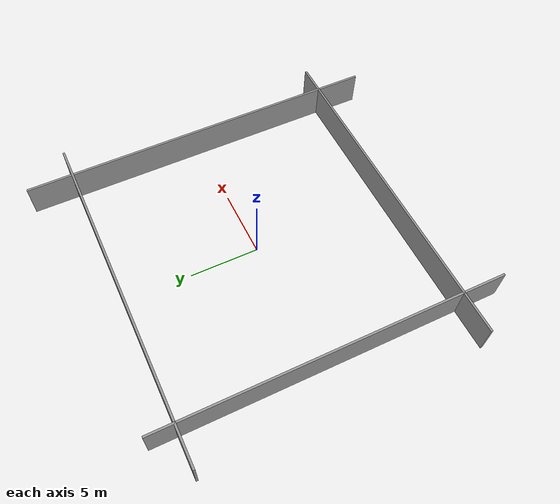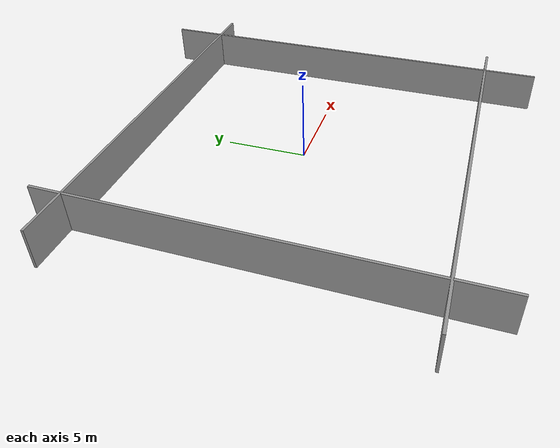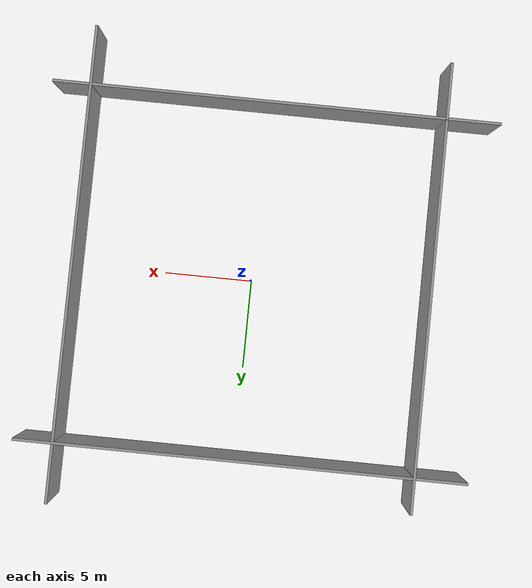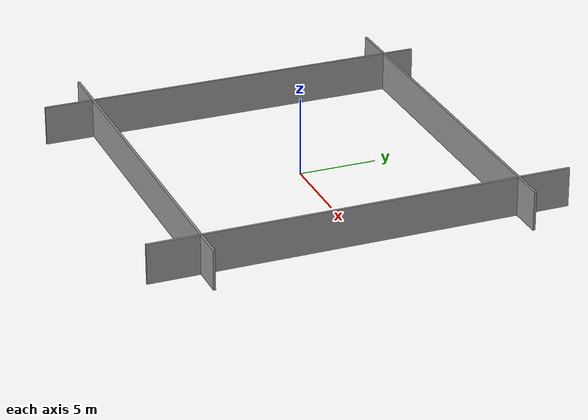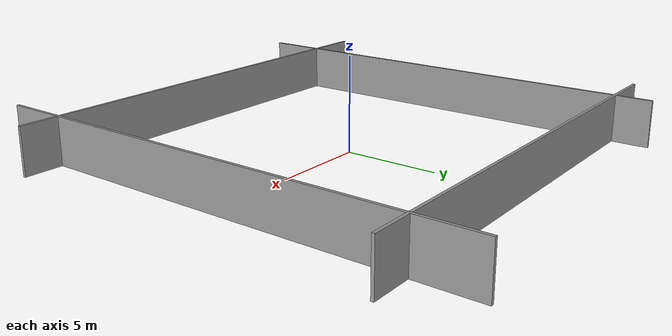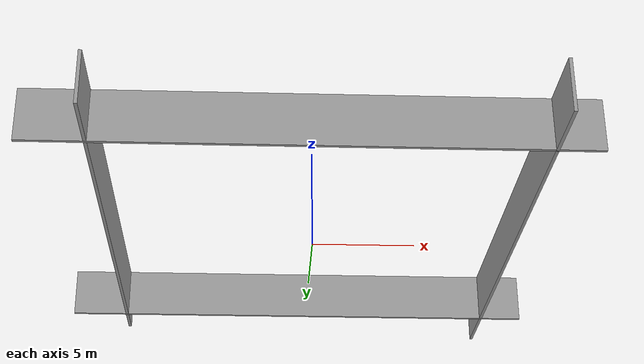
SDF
<?xml version='1.0'?>
<sdf version='1.7'>
  <model name='wall_20x20'>
    <pose>-0.408574 -0.043281 0 0 -0 0</pose>
    <link name='Wall_10'>
      <collision name='Wall_10_Collision'>
        <geometry>
          <box>
            <size>26.5 0.15 2.5</size>
          </box>
        </geometry>
        <pose>0 0 1.25 0 -0 0</pose>
      </collision>
      <visual name='Wall_10_Visual'>
        <pose>0 0 1.25 0 -0 0</pose>
        <geometry>
          <box>
            <size>26.5 0.15 2.5</size>
          </box>
        </geometry>
        <material>
          <script>
            <uri>file://media/materials/scripts/gazebo.material</uri>
            <name>Gazebo/Grey</name>
          </script>
          <ambient>1 1 1 1</ambient>
        </material>
        <meta>
          <layer>0</layer>
        </meta>
      </visual>
      <pose>10.3388 -0 0 0 -0 1.5708</pose>
    </link>
    <link name='Wall_4'>
      <collision name='Wall_4_Collision'>
        <geometry>
          <box>
            <size>25 0.15 2.5</size>
          </box>
        </geometry>
        <pose>0 0 1.25 0 -0 0</pose>
      </collision>
      <visual name='Wall_4_Visual'>
        <pose>0 0 1.25 0 -0 0</pose>
        <geometry>
          <box>
            <size>25 0.15 2.5</size>
          </box>
        </geometry>
        <material>
          <script>
            <uri>file://media/materials/scripts/gazebo.material</uri>
            <name>Gazebo/Grey</name>
          </script>
          <ambient>1 1 1 1</ambient>
        </material>
        <meta>
          <layer>0</layer>
        </meta>
      </visual>
      <pose>-0.041839 -9.9552 0 0 -0 0</pose>
    </link>
    <link name='Wall_6'>
      <collision name='Wall_6_Collision'>
        <geometry>
          <box>
            <size>25 0.15 2.5</size>
          </box>
        </geometry>
        <pose>0 0 1.25 0 -0 0</pose>
      </collision>
      <visual name='Wall_6_Visual'>
        <pose>0 0 1.25 0 -0 0</pose>
        <geometry>
          <box>
            <size>25 0.15 2.5</size>
          </box>
        </geometry>
        <material>
          <script>
            <uri>file://media/materials/scripts/gazebo.material</uri>
            <name>Gazebo/Grey</name>
          </script>
          <ambient>1 1 1 1</ambient>
        </material>
        <meta>
          <layer>0</layer>
        </meta>
      </visual>
      <pose>0.041839 9.9241 0 0 -0 0</pose>
    </link>
    <link name='Wall_8'>
      <collision name='Wall_8_Collision'>
        <geometry>
          <box>
            <size>25 0.15 2.5</size>
          </box>
        </geometry>
        <pose>0 0 1.25 0 -0 0</pose>
      </collision>
      <visual name='Wall_8_Visual'>
        <pose>0 0 1.25 0 -0 0</pose>
        <geometry>
          <box>
            <size>25 0.15 2.5</size>
          </box>
        </geometry>
        <material>
          <script>
            <uri>file://media/materials/scripts/gazebo.material</uri>
            <name>Gazebo/Grey</name>
          </script>
          <ambient>1 1 1 1</ambient>
        </material>
        <meta>
          <layer>0</layer>
        </meta>
      </visual>
      <pose>-9.52541 -0.606599 0 0 -0 -1.5708</pose>
    </link>
    <static>1</static>
  </model>
</sdf>
